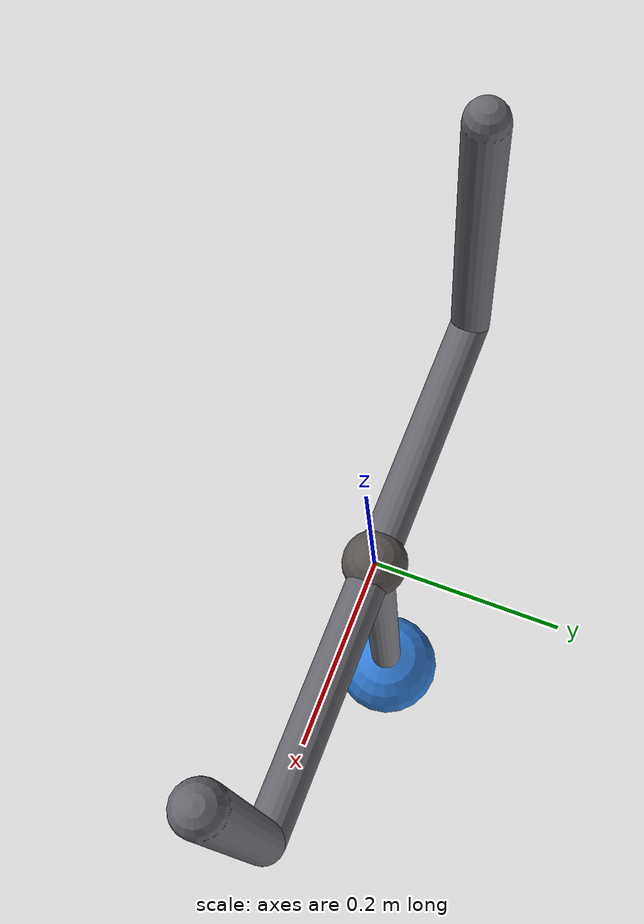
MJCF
<mujoco model="spherical_pendulum">
    <compiler angle="radian"/>
    <option gravity="0 0 -9.81" timestep="0.001" integrator="RK4">
        <flag energy="enable"/>
    </option>

    <default>
        <geom contype="0" conaffinity="0"/>
    </default>

    <worldbody>
        <!-- Support frame -->
        <geom name="beam" type="capsule" size="0.022"
              fromto="-0.3 0 0  0.3 0 0" rgba="0.40 0.40 0.43 1"/>
        <geom name="post_l" type="capsule" size="0.022"
              fromto="-0.3 0 0  -0.3 0 0.35" rgba="0.40 0.40 0.43 1"/>
        <geom name="post_r" type="capsule" size="0.022"
              fromto="0.3 0 0  0.3 0 0.35" rgba="0.40 0.40 0.43 1"/>

        <!-- Pendulum: unlimited ball joint, zero damping -->
        <body name="pendulum" pos="0 0 0">
            <joint name="ball" type="ball" damping="0"/>
            <inertial pos="0 0 -0.5" mass="1.0" diaginertia="0.01 0.01 0.01"/>
            <geom name="socket" type="sphere" size="0.035"
                  pos="0 0 0" rgba="0.35 0.33 0.32 1"/>
            <geom name="rod" type="capsule" size="0.02"
                  fromto="0 0 0  0 0 -0.5" rgba="0.48 0.48 0.50 1"/>
            <geom name="tip" type="sphere" size="0.07"
                  pos="0 0 -0.5" rgba="0.2 0.5 0.85 1"/>
        </body>
    </worldbody>

    <sensor>
        <ballquat name="quat" joint="ball"/>
        <ballangvel name="angvel" joint="ball"/>
    </sensor>
</mujoco>
